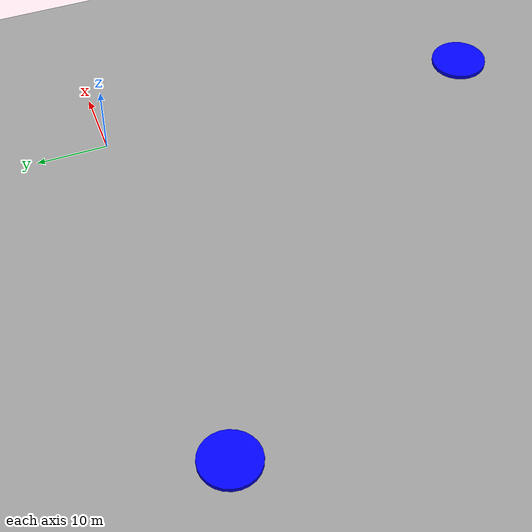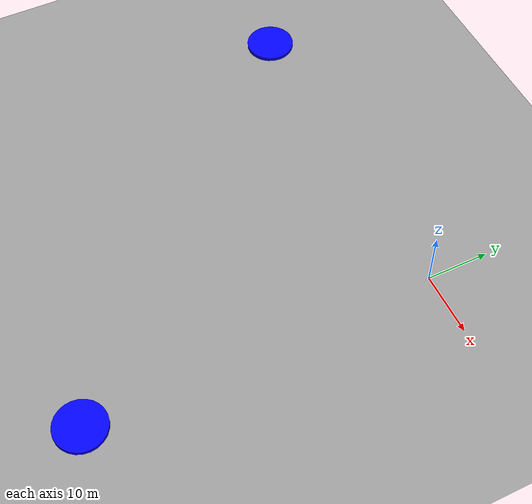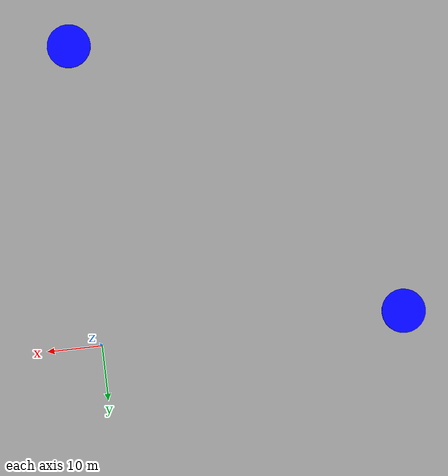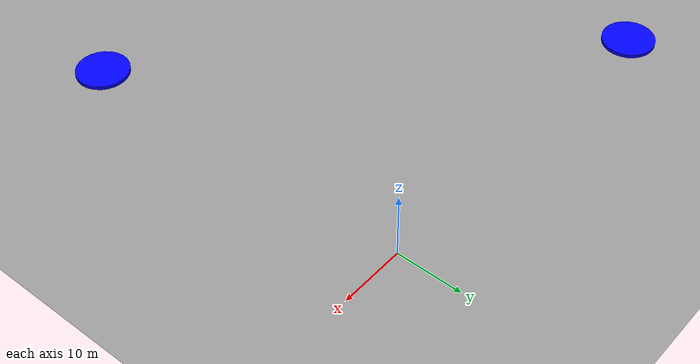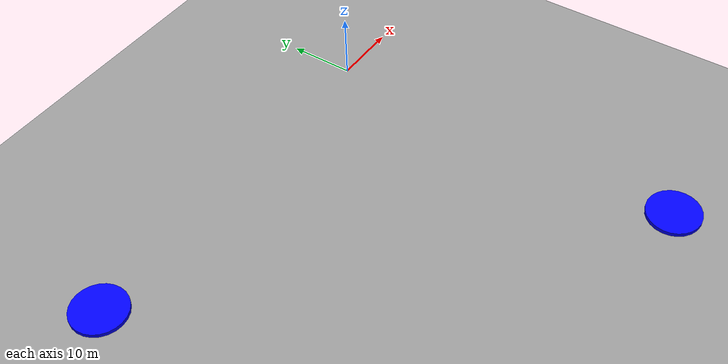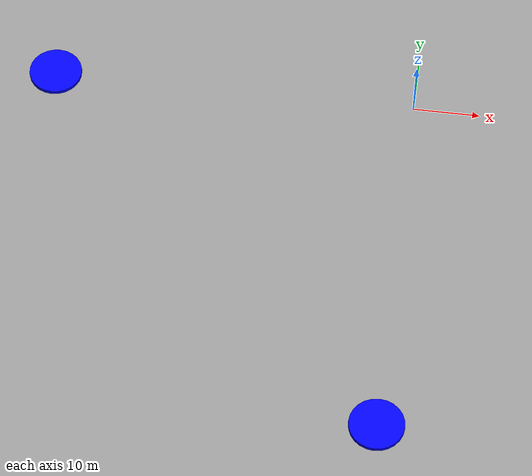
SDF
<?xml version="1.0" ?>
<sdf version="1.9">

  <world name="default">

    <!-- Add a ground plane with a lighter color -->
<model name="ground_plane">
  <static>true</static>
  <link name="link">
    <collision name="collision">
      <geometry>
        <plane>
          <normal>0 0 1</normal>
      <size>100 100</size>
        </plane>
      </geometry>
      <!-- Disable collisions with kinematic objects -->
      <surface>
        <contact>
          <collide_without_contact_bitmask>0x01</collide_without_contact_bitmask>
        </contact>
      </surface>
    </collision>
    <visual name="visual">
      <geometry>
        <plane>
          <normal>0 0 1</normal>
          <size>100 100</size>
        </plane>
      </geometry>
      <material>
        <ambient>0.6 0.6 0.6 1</ambient>
        <diffuse>0.6 0.6 0.6 1</diffuse>
      </material>
    </visual>
  </link>
</model>

<model name="moving_cylinder_3">
<pose>-55.0 0.0 0 0 0 0</pose>
    <link name="moving_link">

    <visual name="visual">
      <geometry>
        <cylinder>
          <radius>4.0</radius>
          <length>1.0</length>
        </cylinder>
      </geometry>
      <material>
        <ambient>0 0 1 1</ambient>
      </material>
    </visual>
    </link>

    <motion>
        <link_name>moving_link</link_name>
        <direction>1 0 0</direction>  <!-- Move along x-axis -->
        <amplitude>110.0</amplitude>    <!-- 0.5 meters -->
        <speed>25.0</speed>            <!-- 2 rad/s -->
        <turnaround_threshold>0.5</turnaround_threshold>
    </motion>
</model>

<model name="moving_cylinder_8">
<pose>0.0 -55.0 0 0 0 0</pose>
    <link name="moving_link">

    <visual name="visual">
      <geometry>
        <cylinder>
          <radius>4.0</radius>
          <length>1.0</length>
        </cylinder>
      </geometry>
      <material>
        <ambient>0 0 1 1</ambient>
      </material>
    </visual>
    </link>

    <motion>
        <link_name>moving_link</link_name>
        <direction>0 1 0</direction>  <!-- Move along x-axis -->
        <amplitude>110.0</amplitude>    <!-- 0.5 meters -->
        <speed>25.0</speed>            <!-- 2 rad/s -->
        <turnaround_threshold>0.5</turnaround_threshold>
    </motion>
</model>

  </world>
</sdf>
